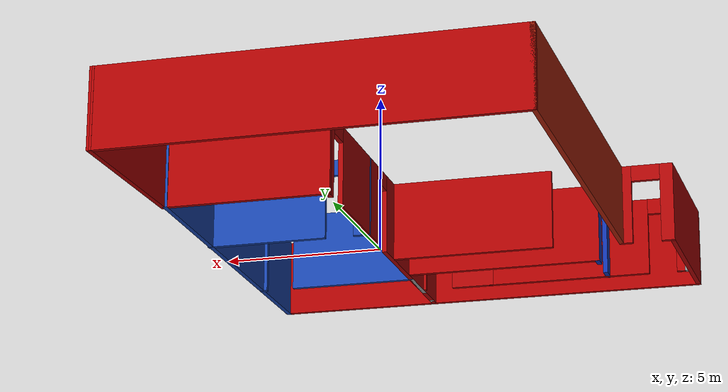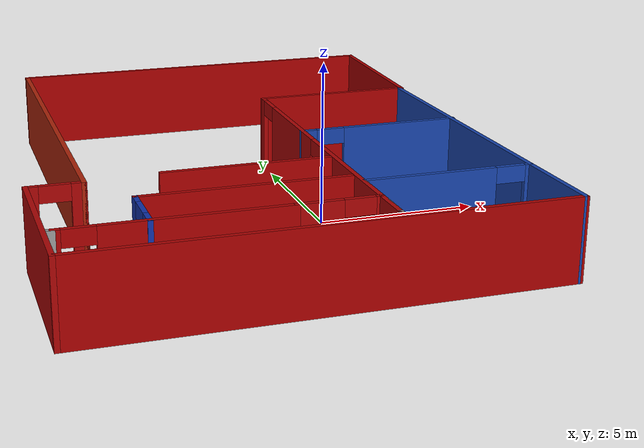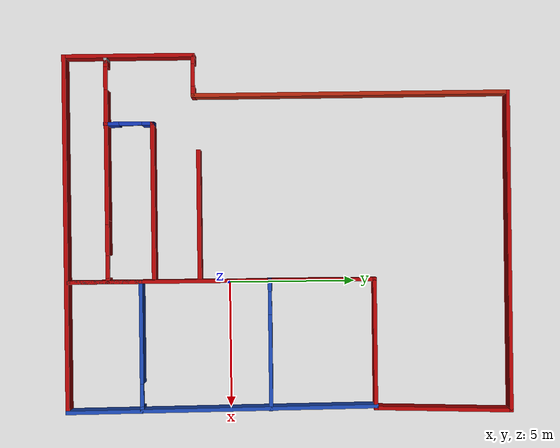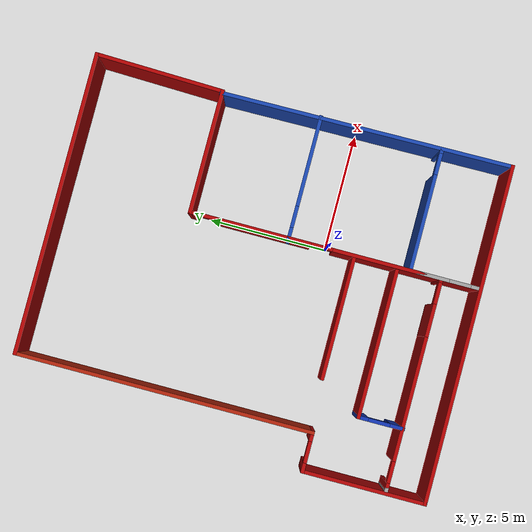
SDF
<?xml version='1.0'?>
<sdf version='1.6'>
  <model name='building'>
    <pose frame=''>-1.91164 2.34383 0 0 -0 0</pose>
    <link name='Wall_11'>
      <pose frame=''>1.84896 -2.62566 0 0 0 -1.5708</pose>
      <visual name='Wall_11_Visual_0'>
        <pose frame=''>-5.91997 0 1.25 0 -0 0</pose>
        <geometry>
          <box>
            <size>0.410051 0.15 2.5</size>
          </box>
        </geometry>
        <material>
          <script>
            <uri>file://media/materials/scripts/gazebo.material</uri>
            <name>Gazebo/Grey</name>
          </script>
          <ambient>0.666667 0.0156863 0.0156863 1</ambient>
        </material>
        <meta>
          <layer>0</layer>
        </meta>
      </visual>
      <collision name='Wall_11_Collision_0'>
        <geometry>
          <box>
            <size>0.410051 0.15 2.5</size>
          </box>
        </geometry>
        <pose frame=''>-5.91997 0 1.25 0 -0 0</pose>
      </collision>
      <visual name='Wall_11_Visual_1'>
        <pose frame=''>-2.88646 0 1.25 0 -0 0</pose>
        <geometry>
          <box>
            <size>3.85699 0.15 2.5</size>
          </box>
        </geometry>
        <material>
          <script>
            <uri>file://media/materials/scripts/gazebo.material</uri>
            <name>Gazebo/Grey</name>
          </script>
          <ambient>0.666667 0.0156863 0.0156863 1</ambient>
        </material>
        <meta>
          <layer>0</layer>
        </meta>
      </visual>
      <collision name='Wall_11_Collision_1'>
        <geometry>
          <box>
            <size>3.85699 0.15 2.5</size>
          </box>
        </geometry>
        <pose frame=''>-2.88646 0 1.25 0 -0 0</pose>
      </collision>
      <visual name='Wall_11_Visual_2'>
        <pose frame=''>3.03352 0 1.25 0 -0 0</pose>
        <geometry>
          <box>
            <size>6.18296 0.15 2.5</size>
          </box>
        </geometry>
        <material>
          <script>
            <uri>file://media/materials/scripts/gazebo.material</uri>
            <name>Gazebo/Grey</name>
          </script>
          <ambient>0.666667 0.0156863 0.0156863 1</ambient>
        </material>
        <meta>
          <layer>0</layer>
        </meta>
      </visual>
      <collision name='Wall_11_Collision_2'>
        <geometry>
          <box>
            <size>6.18296 0.15 2.5</size>
          </box>
        </geometry>
        <pose frame=''>3.03352 0 1.25 0 -0 0</pose>
      </collision>
      <visual name='Wall_11_Visual_3'>
        <pose frame=''>-5.26495 0 2.25 0 -0 0</pose>
        <geometry>
          <box>
            <size>0.9 0.15 0.5</size>
          </box>
        </geometry>
        <material>
          <script>
            <uri>file://media/materials/scripts/gazebo.material</uri>
            <name>Gazebo/Grey</name>
          </script>
          <ambient>0.666667 0.0156863 0.0156863 1</ambient>
        </material>
        <meta>
          <layer>0</layer>
        </meta>
      </visual>
      <collision name='Wall_11_Collision_3'>
        <geometry>
          <box>
            <size>0.9 0.15 0.5</size>
          </box>
        </geometry>
        <pose frame=''>-5.26495 0 2.25 0 -0 0</pose>
      </collision>
      <visual name='Wall_11_Visual_4'>
        <pose frame=''>-0.507962 0 2.25 0 -0 0</pose>
        <geometry>
          <box>
            <size>0.9 0.15 0.5</size>
          </box>
        </geometry>
        <material>
          <script>
            <uri>file://media/materials/scripts/gazebo.material</uri>
            <name>Gazebo/Grey</name>
          </script>
          <ambient>0.666667 0.0156863 0.0156863 1</ambient>
        </material>
        <meta>
          <layer>0</layer>
        </meta>
      </visual>
      <collision name='Wall_11_Collision_4'>
        <geometry>
          <box>
            <size>0.9 0.15 0.5</size>
          </box>
        </geometry>
        <pose frame=''>-0.507962 0 2.25 0 -0 0</pose>
      </collision>
    </link>
    <link name='Wall_12'>
      <pose frame=''>1.84896 -7.25066 0 0 -0 1.5708</pose>
      <visual name='Wall_12_Visual_0'>
        <pose frame=''>-1.30449 0 1.25 0 -0 0</pose>
        <geometry>
          <box>
            <size>0.391025 0.15 2.5</size>
          </box>
        </geometry>
        <material>
          <script>
            <uri>file://media/materials/scripts/gazebo.material</uri>
            <name>Gazebo/Grey</name>
          </script>
          <ambient>1 1 1 1</ambient>
        </material>
        <meta>
          <layer>0</layer>
        </meta>
      </visual>
      <collision name='Wall_12_Collision_0'>
        <geometry>
          <box>
            <size>0.391025 0.15 2.5</size>
          </box>
        </geometry>
        <pose frame=''>-1.30449 0 1.25 0 -0 0</pose>
      </collision>
      <visual name='Wall_12_Visual_1'>
        <pose frame=''>0.645513 0 1.25 0 -0 0</pose>
        <geometry>
          <box>
            <size>1.70897 0.15 2.5</size>
          </box>
        </geometry>
        <material>
          <script>
            <uri>file://media/materials/scripts/gazebo.material</uri>
            <name>Gazebo/Grey</name>
          </script>
          <ambient>1 1 1 1</ambient>
        </material>
        <meta>
          <layer>0</layer>
        </meta>
      </visual>
      <collision name='Wall_12_Collision_1'>
        <geometry>
          <box>
            <size>1.70897 0.15 2.5</size>
          </box>
        </geometry>
        <pose frame=''>0.645513 0 1.25 0 -0 0</pose>
      </collision>
      <visual name='Wall_12_Visual_2'>
        <pose frame=''>-0.658975 0 2.25 0 -0 0</pose>
        <geometry>
          <box>
            <size>0.9 0.15 0.5</size>
          </box>
        </geometry>
        <material>
          <script>
            <uri>file://media/materials/scripts/gazebo.material</uri>
            <name>Gazebo/Grey</name>
          </script>
          <ambient>1 1 1 1</ambient>
        </material>
        <meta>
          <layer>0</layer>
        </meta>
      </visual>
      <collision name='Wall_12_Collision_2'>
        <geometry>
          <box>
            <size>0.9 0.15 0.5</size>
          </box>
        </geometry>
        <pose frame=''>-0.658975 0 2.25 0 -0 0</pose>
      </collision>
    </link>
    <link name='Wall_13'>
      <pose frame=''>4.39896 -5.82566 0 0 -0 0</pose>
      <visual name='Wall_13_Visual_0'>
        <pose frame=''>-0.569063 0 1.25 0 -0 0</pose>
        <geometry>
          <box>
            <size>4.11187 0.15 2.5</size>
          </box>
        </geometry>
        <material>
          <script>
            <uri>file://media/materials/scripts/gazebo.material</uri>
            <name>Gazebo/Grey</name>
          </script>
          <ambient>0.0901961 0.262745 0.666667 1</ambient>
        </material>
        <meta>
          <layer>0</layer>
        </meta>
      </visual>
      <collision name='Wall_13_Collision_0'>
        <geometry>
          <box>
            <size>4.11187 0.15 2.5</size>
          </box>
        </geometry>
        <pose frame=''>-0.569063 0 1.25 0 -0 0</pose>
      </collision>
      <visual name='Wall_13_Visual_1'>
        <pose frame=''>2.50594 0 1.25 0 -0 0</pose>
        <geometry>
          <box>
            <size>0.238126 0.15 2.5</size>
          </box>
        </geometry>
        <material>
          <script>
            <uri>file://media/materials/scripts/gazebo.material</uri>
            <name>Gazebo/Grey</name>
          </script>
          <ambient>0.0901961 0.262745 0.666667 1</ambient>
        </material>
        <meta>
          <layer>0</layer>
        </meta>
      </visual>
      <collision name='Wall_13_Collision_1'>
        <geometry>
          <box>
            <size>0.238126 0.15 2.5</size>
          </box>
        </geometry>
        <pose frame=''>2.50594 0 1.25 0 -0 0</pose>
      </collision>
      <visual name='Wall_13_Visual_2'>
        <pose frame=''>1.93687 0 2.25 0 -0 0</pose>
        <geometry>
          <box>
            <size>0.9 0.15 0.5</size>
          </box>
        </geometry>
        <material>
          <script>
            <uri>file://media/materials/scripts/gazebo.material</uri>
            <name>Gazebo/Grey</name>
          </script>
          <ambient>0.0901961 0.262745 0.666667 1</ambient>
        </material>
        <meta>
          <layer>0</layer>
        </meta>
      </visual>
      <collision name='Wall_13_Collision_2'>
        <geometry>
          <box>
            <size>0.9 0.15 0.5</size>
          </box>
        </geometry>
        <pose frame=''>1.93687 0 2.25 0 -0 0</pose>
      </collision>
    </link>
    <link name='Wall_15'>
      <pose frame=''>4.39896 -0.725658 0 0 -0 3.14159</pose>
      <visual name='Wall_15_Visual_0'>
        <pose frame=''>-0.714093 0 1.25 0 -0 0</pose>
        <geometry>
          <box>
            <size>3.82181 0.15 2.5</size>
          </box>
        </geometry>
        <material>
          <script>
            <uri>file://media/materials/scripts/gazebo.material</uri>
            <name>Gazebo/Grey</name>
          </script>
          <ambient>0.0901961 0.262745 0.666667 1</ambient>
        </material>
        <meta>
          <layer>0</layer>
        </meta>
      </visual>
      <collision name='Wall_15_Collision_0'>
        <geometry>
          <box>
            <size>3.82181 0.15 2.5</size>
          </box>
        </geometry>
        <pose frame=''>-0.714093 0 1.25 0 -0 0</pose>
      </collision>
      <visual name='Wall_15_Visual_1'>
        <pose frame=''>2.36091 0 1.25 0 -0 0</pose>
        <geometry>
          <box>
            <size>0.528186 0.15 2.5</size>
          </box>
        </geometry>
        <material>
          <script>
            <uri>file://media/materials/scripts/gazebo.material</uri>
            <name>Gazebo/Grey</name>
          </script>
          <ambient>0.0901961 0.262745 0.666667 1</ambient>
        </material>
        <meta>
          <layer>0</layer>
        </meta>
      </visual>
      <collision name='Wall_15_Collision_1'>
        <geometry>
          <box>
            <size>0.528186 0.15 2.5</size>
          </box>
        </geometry>
        <pose frame=''>2.36091 0 1.25 0 -0 0</pose>
      </collision>
      <visual name='Wall_15_Visual_2'>
        <pose frame=''>1.64681 0 2.25 0 -0 0</pose>
        <geometry>
          <box>
            <size>0.9 0.15 0.5</size>
          </box>
        </geometry>
        <material>
          <script>
            <uri>file://media/materials/scripts/gazebo.material</uri>
            <name>Gazebo/Grey</name>
          </script>
          <ambient>0.0901961 0.262745 0.666667 1</ambient>
        </material>
        <meta>
          <layer>0</layer>
        </meta>
      </visual>
      <collision name='Wall_15_Collision_2'>
        <geometry>
          <box>
            <size>0.9 0.15 0.5</size>
          </box>
        </geometry>
        <pose frame=''>1.64681 0 2.25 0 -0 0</pose>
      </collision>
    </link>
    <link name='Wall_19'>
      <pose frame=''>0.662742 -7.12848 0 0 -0 0</pose>
      <visual name='Wall_19_Visual_0'>
        <pose frame=''>-0.560443 0 1.25 0 -0 0</pose>
        <geometry>
          <box>
            <size>1.37911 0.15 2.5</size>
          </box>
        </geometry>
        <material>
          <script>
            <uri>file://media/materials/scripts/gazebo.material</uri>
            <name>Gazebo/Grey</name>
          </script>
          <ambient>0.666667 0.0156863 0.0156863 1</ambient>
        </material>
        <meta>
          <layer>0</layer>
        </meta>
      </visual>
      <collision name='Wall_19_Collision_0'>
        <geometry>
          <box>
            <size>1.37911 0.15 2.5</size>
          </box>
        </geometry>
        <pose frame=''>-0.560443 0 1.25 0 -0 0</pose>
      </collision>
      <visual name='Wall_19_Visual_1'>
        <pose frame=''>1.13956 0 1.25 0 -0 0</pose>
        <geometry>
          <box>
            <size>0.220886 0.15 2.5</size>
          </box>
        </geometry>
        <material>
          <script>
            <uri>file://media/materials/scripts/gazebo.material</uri>
            <name>Gazebo/Grey</name>
          </script>
          <ambient>0.666667 0.0156863 0.0156863 1</ambient>
        </material>
        <meta>
          <layer>0</layer>
        </meta>
      </visual>
      <collision name='Wall_19_Collision_1'>
        <geometry>
          <box>
            <size>0.220886 0.15 2.5</size>
          </box>
        </geometry>
        <pose frame=''>1.13956 0 1.25 0 -0 0</pose>
      </collision>
      <visual name='Wall_19_Visual_2'>
        <pose frame=''>0.579114 0 2.25 0 -0 0</pose>
        <geometry>
          <box>
            <size>0.9 0.15 0.5</size>
          </box>
        </geometry>
        <material>
          <script>
            <uri>file://media/materials/scripts/gazebo.material</uri>
            <name>Gazebo/Grey</name>
          </script>
          <ambient>0.666667 0.0156863 0.0156863 1</ambient>
        </material>
        <meta>
          <layer>0</layer>
        </meta>
      </visual>
      <collision name='Wall_19_Collision_2'>
        <geometry>
          <box>
            <size>0.9 0.15 0.5</size>
          </box>
        </geometry>
        <pose frame=''>0.579114 0 2.25 0 -0 0</pose>
      </collision>
    </link>
    <link name='Wall_2'>
      <collision name='Wall_2_Collision'>
        <geometry>
          <box>
            <size>12.3747 0.15 2.5</size>
          </box>
        </geometry>
        <pose frame=''>0 0 1.25 0 -0 0</pose>
      </collision>
      <visual name='Wall_2_Visual'>
        <pose frame=''>0 0 1.25 0 -0 0</pose>
        <geometry>
          <box>
            <size>12.3747 0.15 2.5</size>
          </box>
        </geometry>
        <material>
          <script>
            <uri>file://media/materials/scripts/gazebo.material</uri>
            <name>Gazebo/Grey</name>
          </script>
          <ambient>0.0901961 0.262745 0.666667 1</ambient>
        </material>
        <meta>
          <layer>0</layer>
        </meta>
      </visual>
      <pose frame=''>6.93693 -2.66363 0 0 0 -1.56065</pose>
    </link>
    <link name='Wall_22'>
      <pose frame=''>-3.68726 -7.12848 0 0 -0 3.14159</pose>
      <visual name='Wall_22_Visual_0'>
        <pose frame=''>-0.585034 0 1.25 0 -0 0</pose>
        <geometry>
          <box>
            <size>5.32993 0.15 2.5</size>
          </box>
        </geometry>
        <material>
          <script>
            <uri>file://media/materials/scripts/gazebo.material</uri>
            <name>Gazebo/Grey</name>
          </script>
          <ambient>0.666667 0 0 1</ambient>
        </material>
        <meta>
          <layer>0</layer>
        </meta>
      </visual>
      <collision name='Wall_22_Collision_0'>
        <geometry>
          <box>
            <size>5.32993 0.15 2.5</size>
          </box>
        </geometry>
        <pose frame=''>-0.585034 0 1.25 0 -0 0</pose>
      </collision>
      <visual name='Wall_22_Visual_1'>
        <pose frame=''>3.11497 0 1.25 0 -0 0</pose>
        <geometry>
          <box>
            <size>0.270068 0.15 2.5</size>
          </box>
        </geometry>
        <material>
          <script>
            <uri>file://media/materials/scripts/gazebo.material</uri>
            <name>Gazebo/Grey</name>
          </script>
          <ambient>0.666667 0 0 1</ambient>
        </material>
        <meta>
          <layer>0</layer>
        </meta>
      </visual>
      <collision name='Wall_22_Collision_1'>
        <geometry>
          <box>
            <size>0.270068 0.15 2.5</size>
          </box>
        </geometry>
        <pose frame=''>3.11497 0 1.25 0 -0 0</pose>
      </collision>
      <visual name='Wall_22_Visual_2'>
        <pose frame=''>2.52993 0 2.25 0 -0 0</pose>
        <geometry>
          <box>
            <size>0.9 0.15 0.5</size>
          </box>
        </geometry>
        <material>
          <script>
            <uri>file://media/materials/scripts/gazebo.material</uri>
            <name>Gazebo/Grey</name>
          </script>
          <ambient>0.666667 0 0 1</ambient>
        </material>
        <meta>
          <layer>0</layer>
        </meta>
      </visual>
      <collision name='Wall_22_Collision_2'>
        <geometry>
          <box>
            <size>0.9 0.15 0.5</size>
          </box>
        </geometry>
        <pose frame=''>2.52993 0 2.25 0 -0 0</pose>
      </collision>
    </link>
    <link name='Wall_23'>
      <collision name='Wall_23_Collision'>
        <geometry>
          <box>
            <size>0.25 0.15 2.5</size>
          </box>
        </geometry>
        <pose frame=''>0 0 1.25 0 -0 0</pose>
      </collision>
      <visual name='Wall_23_Visual'>
        <pose frame=''>0 0 1.25 0 -0 0</pose>
        <geometry>
          <box>
            <size>0.25 0.15 2.5</size>
          </box>
        </geometry>
        <material>
          <script>
            <uri>file://media/materials/scripts/gazebo.material</uri>
            <name>Gazebo/Grey</name>
          </script>
          <ambient>1 1 1 1</ambient>
        </material>
        <meta>
          <layer>0</layer>
        </meta>
      </visual>
      <pose frame=''>-6.91226 -7.12848 0 0 -0 3.14159</pose>
    </link>
    <link name='Wall_25'>
      <pose frame=''>-4.41404 -6.226 0 0 -0 1.5708</pose>
      <visual name='Wall_25_Visual_0'>
        <pose frame=''>-0.691286 0 1.25 0 -0 0</pose>
        <geometry>
          <box>
            <size>0.617427 0.15 2.5</size>
          </box>
        </geometry>
        <material>
          <script>
            <uri>file://media/materials/scripts/gazebo.material</uri>
            <name>Gazebo/Grey</name>
          </script>
          <ambient>0.0627451 0.196078 0.666667 1</ambient>
        </material>
        <meta>
          <layer>0</layer>
        </meta>
      </visual>
      <collision name='Wall_25_Collision_0'>
        <geometry>
          <box>
            <size>0.617427 0.15 2.5</size>
          </box>
        </geometry>
        <pose frame=''>-0.691286 0 1.25 0 -0 0</pose>
      </collision>
      <visual name='Wall_25_Visual_1'>
        <pose frame=''>0.758714 0 1.25 0 -0 0</pose>
        <geometry>
          <box>
            <size>0.482573 0.15 2.5</size>
          </box>
        </geometry>
        <material>
          <script>
            <uri>file://media/materials/scripts/gazebo.material</uri>
            <name>Gazebo/Grey</name>
          </script>
          <ambient>0.0627451 0.196078 0.666667 1</ambient>
        </material>
        <meta>
          <layer>0</layer>
        </meta>
      </visual>
      <collision name='Wall_25_Collision_1'>
        <geometry>
          <box>
            <size>0.482573 0.15 2.5</size>
          </box>
        </geometry>
        <pose frame=''>0.758714 0 1.25 0 -0 0</pose>
      </collision>
      <visual name='Wall_25_Visual_2'>
        <pose frame=''>0.067427 0 2.25 0 -0 0</pose>
        <geometry>
          <box>
            <size>0.9 0.15 0.5</size>
          </box>
        </geometry>
        <material>
          <script>
            <uri>file://media/materials/scripts/gazebo.material</uri>
            <name>Gazebo/Grey</name>
          </script>
          <ambient>0.0627451 0.196078 0.666667 1</ambient>
        </material>
        <meta>
          <layer>0</layer>
        </meta>
      </visual>
      <collision name='Wall_25_Collision_2'>
        <geometry>
          <box>
            <size>0.9 0.15 0.5</size>
          </box>
        </geometry>
        <pose frame=''>0.067427 0 2.25 0 -0 0</pose>
      </collision>
    </link>
    <link name='Wall_26'>
      <collision name='Wall_26_Collision'>
        <geometry>
          <box>
            <size>6.25 0.15 2.5</size>
          </box>
        </geometry>
        <pose frame=''>0 0 1.25 0 -0 0</pose>
      </collision>
      <visual name='Wall_26_Visual'>
        <pose frame=''>0 0 1.25 0 -0 0</pose>
        <geometry>
          <box>
            <size>6.25 0.15 2.5</size>
          </box>
        </geometry>
        <material>
          <script>
            <uri>file://media/materials/scripts/gazebo.material</uri>
            <name>Gazebo/Grey</name>
          </script>
          <ambient>0.666667 0 0 1</ambient>
        </material>
        <meta>
          <layer>0</layer>
        </meta>
      </visual>
      <pose frame=''>-1.36404 -5.301 0 0 -0 0</pose>
    </link>
    <link name='Wall_29'>
      <collision name='Wall_29_Collision'>
        <geometry>
          <box>
            <size>5.25 0.15 2.5</size>
          </box>
        </geometry>
        <pose frame=''>0 0 1.25 0 -0 0</pose>
      </collision>
      <visual name='Wall_29_Visual'>
        <pose frame=''>0 0 1.25 0 -0 0</pose>
        <geometry>
          <box>
            <size>5.25 0.15 2.5</size>
          </box>
        </geometry>
        <material>
          <script>
            <uri>file://media/materials/scripts/gazebo.material</uri>
            <name>Gazebo/Grey</name>
          </script>
          <ambient>0.666667 0 0 1</ambient>
        </material>
        <meta>
          <layer>0</layer>
        </meta>
      </visual>
      <pose frame=''>-0.734982 -3.49267 0 0 -0 3.14159</pose>
    </link>
    <link name='Wall_3'>
      <collision name='Wall_3_Collision'>
        <geometry>
          <box>
            <size>14.25 0.15 2.5</size>
          </box>
        </geometry>
        <pose frame=''>0 0 1.25 0 -0 0</pose>
      </collision>
      <visual name='Wall_3_Visual'>
        <pose frame=''>0 0 1.25 0 -0 0</pose>
        <geometry>
          <box>
            <size>14.25 0.15 2.5</size>
          </box>
        </geometry>
        <material>
          <script>
            <uri>file://media/materials/scripts/gazebo.material</uri>
            <name>Gazebo/Grey</name>
          </script>
          <ambient>0.666667 0 0 1</ambient>
        </material>
        <meta>
          <layer>0</layer>
        </meta>
      </visual>
      <pose frame=''>-0.051036 -8.77566 0 0 -0 3.14159</pose>
    </link>
    <link name='Wall_37'>
      <collision name='Wall_37_Collision'>
        <geometry>
          <box>
            <size>12.75 0.15 2.5</size>
          </box>
        </geometry>
        <pose frame=''>0 0 1.25 0 -0 0</pose>
      </collision>
      <visual name='Wall_37_Visual'>
        <pose frame=''>0 0 1.25 0 -0 0</pose>
        <geometry>
          <box>
            <size>12.75 0.15 2.5</size>
          </box>
        </geometry>
        <material>
          <script>
            <uri>file://media/materials/scripts/gazebo.material</uri>
            <name>Gazebo/Grey</name>
          </script>
          <ambient>0.666667 0 0 1</ambient>
        </material>
        <meta>
          <layer>0</layer>
        </meta>
      </visual>
      <pose frame=''>0.798964 8.77434 0 0 -0 0</pose>
    </link>
    <link name='Wall_4'>
      <collision name='Wall_4_Collision'>
        <geometry>
          <box>
            <size>5.25 0.15 2.5</size>
          </box>
        </geometry>
        <pose frame=''>0 0 1.25 0 -0 0</pose>
      </collision>
      <visual name='Wall_4_Visual'>
        <pose frame=''>0 0 1.25 0 -0 0</pose>
        <geometry>
          <box>
            <size>5.25 0.15 2.5</size>
          </box>
        </geometry>
        <material>
          <script>
            <uri>file://media/materials/scripts/gazebo.material</uri>
            <name>Gazebo/Grey</name>
          </script>
          <ambient>0.666667 0.0156863 0.0156863 1</ambient>
        </material>
        <meta>
          <layer>0</layer>
        </meta>
      </visual>
      <pose frame=''>-7.10104 -6.22566 0 0 -0 1.5708</pose>
    </link>
    <link name='Wall_40'>
      <collision name='Wall_40_Collision'>
        <geometry>
          <box>
            <size>5.25 0.15 2.5</size>
          </box>
        </geometry>
        <pose frame=''>0 0 1.25 0 -0 0</pose>
      </collision>
      <visual name='Wall_40_Visual'>
        <pose frame=''>0 0 1.25 0 -0 0</pose>
        <geometry>
          <box>
            <size>5.25 0.15 2.5</size>
          </box>
        </geometry>
        <material>
          <script>
            <uri>file://media/materials/scripts/gazebo.material</uri>
            <name>Gazebo/Grey</name>
          </script>
          <ambient>0.666667 0 0 1</ambient>
        </material>
        <meta>
          <layer>0</layer>
        </meta>
      </visual>
      <pose frame=''>4.39896 3.42434 0 0 -0 0</pose>
    </link>
    <link name='Wall_42'>
      <collision name='Wall_42_Collision'>
        <geometry>
          <box>
            <size>5.5021 0.15 2.5</size>
          </box>
        </geometry>
        <pose frame=''>0 0 1.25 0 -0 0</pose>
      </collision>
      <visual name='Wall_42_Visual'>
        <pose frame=''>0 0 1.25 0 -0 0</pose>
        <geometry>
          <box>
            <size>5.5021 0.15 2.5</size>
          </box>
        </geometry>
        <material>
          <script>
            <uri>file://media/materials/scripts/gazebo.material</uri>
            <name>Gazebo/Grey</name>
          </script>
          <ambient>0.666667 0 0 1</ambient>
        </material>
        <meta>
          <layer>0</layer>
        </meta>
      </visual>
      <pose frame=''>7.02396 6.09934 0 0 -0 1.54277</pose>
    </link>
    <link name='Wall_5'>
      <pose frame=''>-6.30104 -3.67566 0 0 -0 0</pose>
      <visual name='Wall_5_Visual_0'>
        <pose frame=''>-0.666059 0 1.25 0 -0 0</pose>
        <geometry>
          <box>
            <size>0.417882 0.15 2.5</size>
          </box>
        </geometry>
        <material>
          <script>
            <uri>file://media/materials/scripts/gazebo.material</uri>
            <name>Gazebo/Grey</name>
          </script>
          <ambient>0.666667 0.0156863 0.0156863 1</ambient>
        </material>
        <meta>
          <layer>0</layer>
        </meta>
      </visual>
      <collision name='Wall_5_Collision_0'>
        <geometry>
          <box>
            <size>0.417882 0.15 2.5</size>
          </box>
        </geometry>
        <pose frame=''>-0.666059 0 1.25 0 -0 0</pose>
      </collision>
      <visual name='Wall_5_Visual_1'>
        <pose frame=''>0.658941 0 1.25 0 -0 0</pose>
        <geometry>
          <box>
            <size>0.432118 0.15 2.5</size>
          </box>
        </geometry>
        <material>
          <script>
            <uri>file://media/materials/scripts/gazebo.material</uri>
            <name>Gazebo/Grey</name>
          </script>
          <ambient>0.666667 0.0156863 0.0156863 1</ambient>
        </material>
        <meta>
          <layer>0</layer>
        </meta>
      </visual>
      <collision name='Wall_5_Collision_1'>
        <geometry>
          <box>
            <size>0.432118 0.15 2.5</size>
          </box>
        </geometry>
        <pose frame=''>0.658941 0 1.25 0 -0 0</pose>
      </collision>
      <visual name='Wall_5_Visual_2'>
        <pose frame=''>-0.007118 0 2.25 0 -0 0</pose>
        <geometry>
          <box>
            <size>0.9 0.15 0.5</size>
          </box>
        </geometry>
        <material>
          <script>
            <uri>file://media/materials/scripts/gazebo.material</uri>
            <name>Gazebo/Grey</name>
          </script>
          <ambient>0.666667 0.0156863 0.0156863 1</ambient>
        </material>
        <meta>
          <layer>0</layer>
        </meta>
      </visual>
      <collision name='Wall_5_Collision_2'>
        <geometry>
          <box>
            <size>0.9 0.15 0.5</size>
          </box>
        </geometry>
        <pose frame=''>-0.007118 0 2.25 0 -0 0</pose>
      </collision>
    </link>
    <link name='Wall_50'>
      <collision name='Wall_50_Collision'>
        <geometry>
          <box>
            <size>12.6 0.15 2.5</size>
          </box>
        </geometry>
        <pose frame=''>0 0 1.25 0 -0 0</pose>
      </collision>
      <visual name='Wall_50_Visual'>
        <pose frame=''>0 0 1.25 0 -0 0</pose>
        <geometry>
          <box>
            <size>12.6 0.15 2.5</size>
          </box>
        </geometry>
        <material>
          <script>
            <uri>file://media/materials/scripts/gazebo.material</uri>
            <name>Gazebo/Grey</name>
          </script>
          <ambient>0.666667 0.133333 0.0392157 1</ambient>
        </material>
        <meta>
          <layer>0</layer>
        </meta>
      </visual>
      <pose frame=''>-5.50103 2.54934 0 0 0 -1.5708</pose>
    </link>
    <static>1</static>
  </model>
</sdf>
